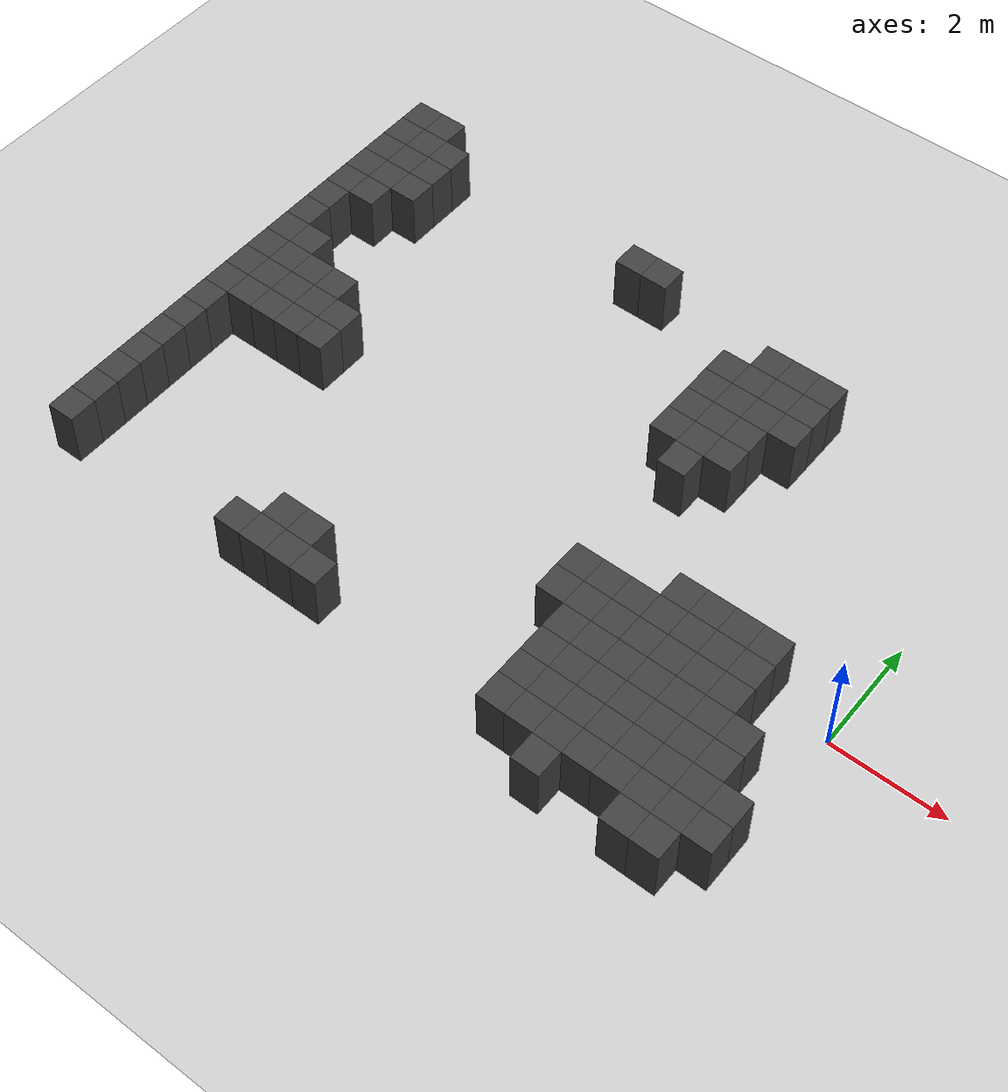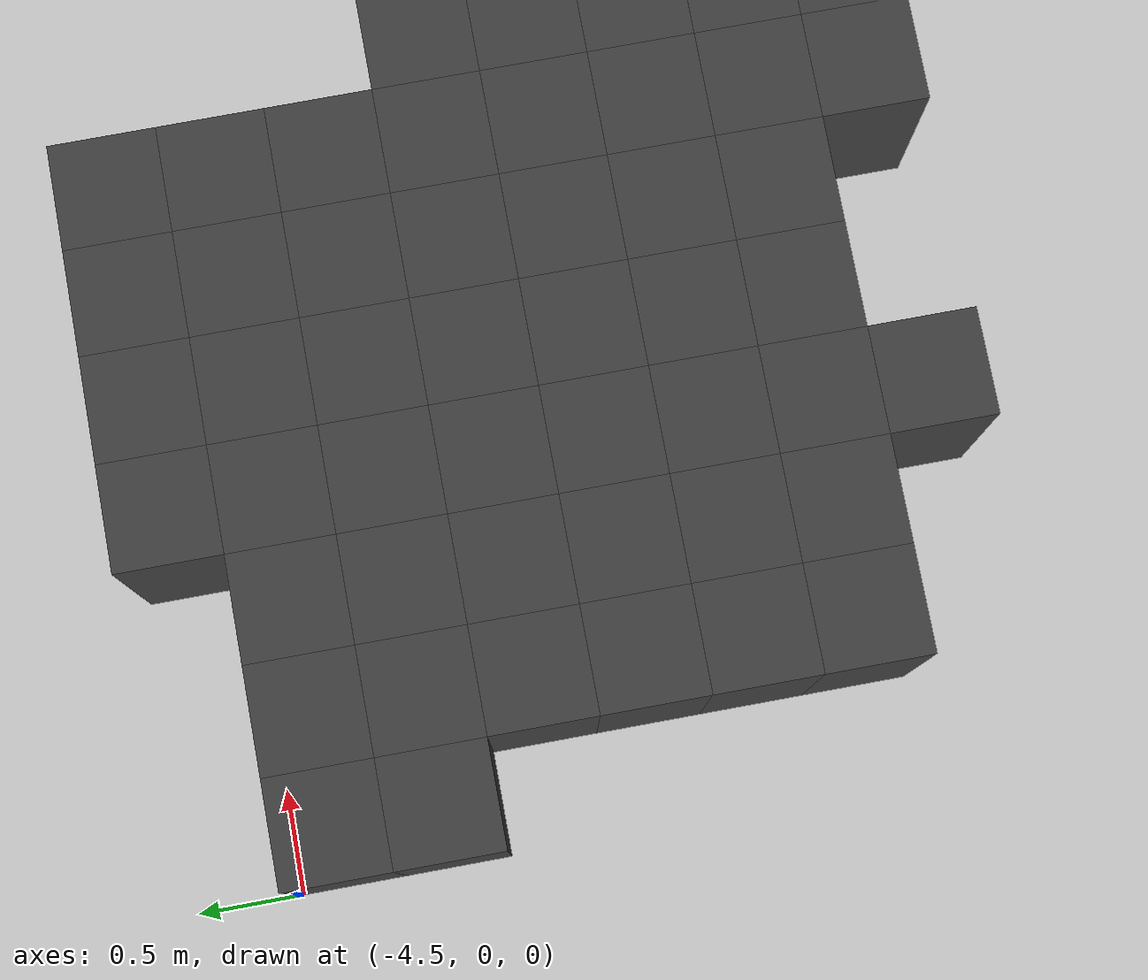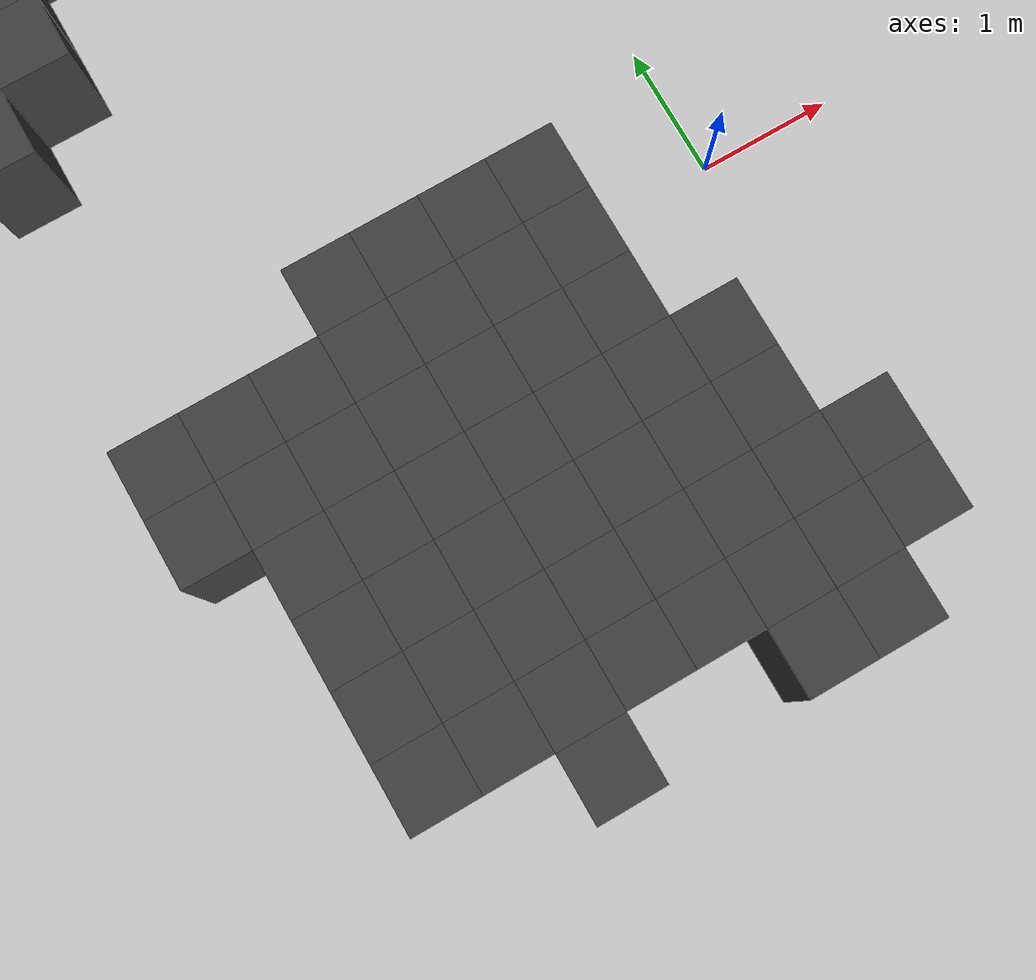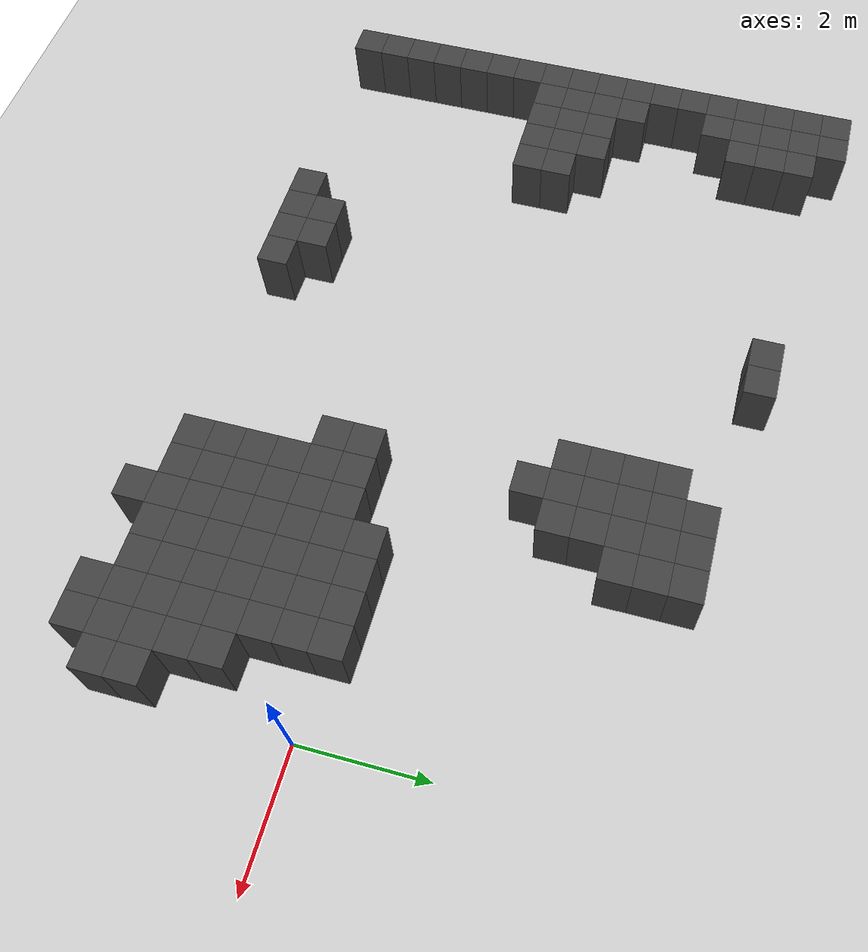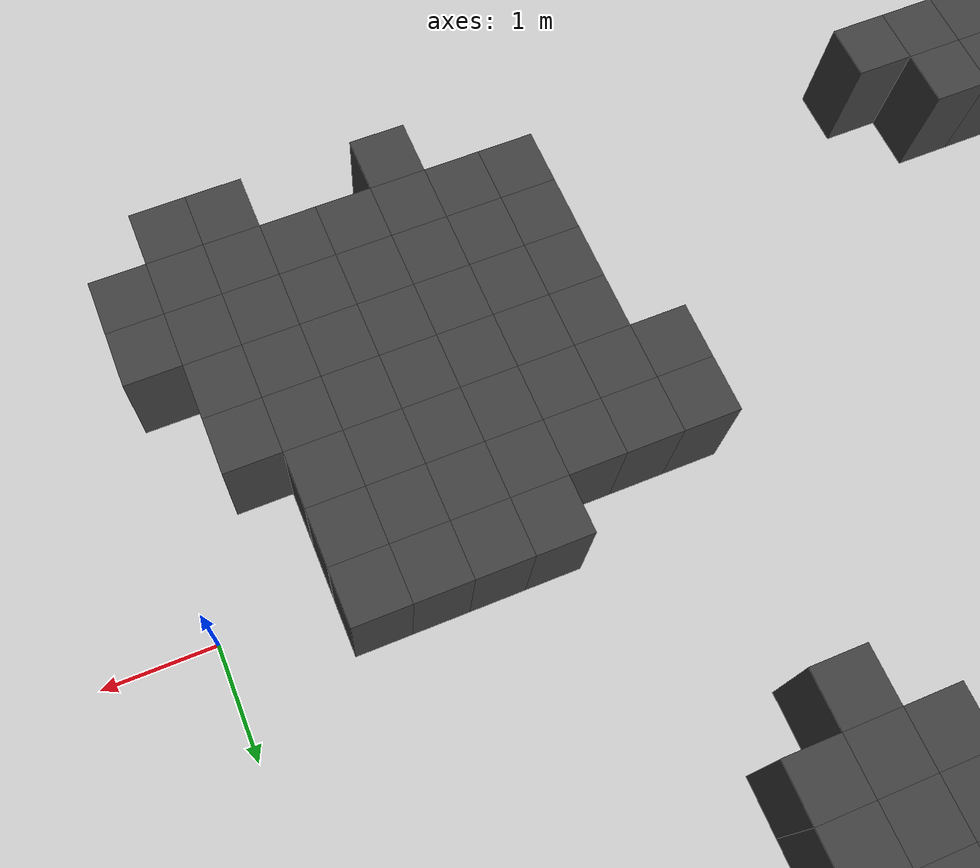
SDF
<sdf version="1.7">
 <world name="map_8829">
  <model name="ground_plane">
   <static>true</static>
   <link name="link">
    <collision name="collision">
     <geometry><plane><normal>0 0 1</normal><size>200 200</size></plane></geometry>
    </collision>
    <visual name="visual">
     <geometry><plane><normal>0 0 1</normal><size>200 200</size></plane></geometry>
     <material><ambient>0.8 0.8 0.8 1</ambient><diffuse>0.8 0.8 0.8 1</diffuse></material>
    </visual>
   </link>
  </model>
  <model name="maze_environment">
   <static>true</static>
   <link name="wall_222">
    <pose>-12.250 5.750 0.500 0 0 0</pose>
    <collision name="col"><geometry><box><size>0.5 0.5 1.0</size></box></geometry></collision>
    <visual name="vis">
     <geometry><box><size>0.5 0.5 1.0</size></box></geometry>
     <material><ambient>0.15 0.15 0.15 1</ambient><diffuse>0.25 0.25 0.25 1</diffuse></material>
    </visual>
   </link>
   <link name="wall_223">
    <pose>-11.750 5.750 0.500 0 0 0</pose>
    <collision name="col"><geometry><box><size>0.5 0.5 1.0</size></box></geometry></collision>
    <visual name="vis">
     <geometry><box><size>0.5 0.5 1.0</size></box></geometry>
     <material><ambient>0.15 0.15 0.15 1</ambient><diffuse>0.25 0.25 0.25 1</diffuse></material>
    </visual>
   </link>
   <link name="wall_237">
    <pose>-12.250 5.250 0.500 0 0 0</pose>
    <collision name="col"><geometry><box><size>0.5 0.5 1.0</size></box></geometry></collision>
    <visual name="vis">
     <geometry><box><size>0.5 0.5 1.0</size></box></geometry>
     <material><ambient>0.15 0.15 0.15 1</ambient><diffuse>0.25 0.25 0.25 1</diffuse></material>
    </visual>
   </link>
   <link name="wall_238">
    <pose>-11.750 5.250 0.500 0 0 0</pose>
    <collision name="col"><geometry><box><size>0.5 0.5 1.0</size></box></geometry></collision>
    <visual name="vis">
     <geometry><box><size>0.5 0.5 1.0</size></box></geometry>
     <material><ambient>0.15 0.15 0.15 1</ambient><diffuse>0.25 0.25 0.25 1</diffuse></material>
    </visual>
   </link>
   <link name="wall_239">
    <pose>-11.250 5.250 0.500 0 0 0</pose>
    <collision name="col"><geometry><box><size>0.5 0.5 1.0</size></box></geometry></collision>
    <visual name="vis">
     <geometry><box><size>0.5 0.5 1.0</size></box></geometry>
     <material><ambient>0.15 0.15 0.15 1</ambient><diffuse>0.25 0.25 0.25 1</diffuse></material>
    </visual>
   </link>
   <link name="wall_240">
    <pose>-7.250 5.250 0.500 0 0 0</pose>
    <collision name="col"><geometry><box><size>0.5 0.5 1.0</size></box></geometry></collision>
    <visual name="vis">
     <geometry><box><size>0.5 0.5 1.0</size></box></geometry>
     <material><ambient>0.15 0.15 0.15 1</ambient><diffuse>0.25 0.25 0.25 1</diffuse></material>
    </visual>
   </link>
   <link name="wall_241">
    <pose>-6.750 5.250 0.500 0 0 0</pose>
    <collision name="col"><geometry><box><size>0.5 0.5 1.0</size></box></geometry></collision>
    <visual name="vis">
     <geometry><box><size>0.5 0.5 1.0</size></box></geometry>
     <material><ambient>0.15 0.15 0.15 1</ambient><diffuse>0.25 0.25 0.25 1</diffuse></material>
    </visual>
   </link>
   <link name="wall_250">
    <pose>-12.250 4.750 0.500 0 0 0</pose>
    <collision name="col"><geometry><box><size>0.5 0.5 1.0</size></box></geometry></collision>
    <visual name="vis">
     <geometry><box><size>0.5 0.5 1.0</size></box></geometry>
     <material><ambient>0.15 0.15 0.15 1</ambient><diffuse>0.25 0.25 0.25 1</diffuse></material>
    </visual>
   </link>
   <link name="wall_251">
    <pose>-11.750 4.750 0.500 0 0 0</pose>
    <collision name="col"><geometry><box><size>0.5 0.5 1.0</size></box></geometry></collision>
    <visual name="vis">
     <geometry><box><size>0.5 0.5 1.0</size></box></geometry>
     <material><ambient>0.15 0.15 0.15 1</ambient><diffuse>0.25 0.25 0.25 1</diffuse></material>
    </visual>
   </link>
   <link name="wall_252">
    <pose>-11.250 4.750 0.500 0 0 0</pose>
    <collision name="col"><geometry><box><size>0.5 0.5 1.0</size></box></geometry></collision>
    <visual name="vis">
     <geometry><box><size>0.5 0.5 1.0</size></box></geometry>
     <material><ambient>0.15 0.15 0.15 1</ambient><diffuse>0.25 0.25 0.25 1</diffuse></material>
    </visual>
   </link>
   <link name="wall_253">
    <pose>-4.250 4.750 0.500 0 0 0</pose>
    <collision name="col"><geometry><box><size>0.5 0.5 1.0</size></box></geometry></collision>
    <visual name="vis">
     <geometry><box><size>0.5 0.5 1.0</size></box></geometry>
     <material><ambient>0.15 0.15 0.15 1</ambient><diffuse>0.25 0.25 0.25 1</diffuse></material>
    </visual>
   </link>
   <link name="wall_254">
    <pose>-3.750 4.750 0.500 0 0 0</pose>
    <collision name="col"><geometry><box><size>0.5 0.5 1.0</size></box></geometry></collision>
    <visual name="vis">
     <geometry><box><size>0.5 0.5 1.0</size></box></geometry>
     <material><ambient>0.15 0.15 0.15 1</ambient><diffuse>0.25 0.25 0.25 1</diffuse></material>
    </visual>
   </link>
   <link name="wall_255">
    <pose>-3.250 4.750 0.500 0 0 0</pose>
    <collision name="col"><geometry><box><size>0.5 0.5 1.0</size></box></geometry></collision>
    <visual name="vis">
     <geometry><box><size>0.5 0.5 1.0</size></box></geometry>
     <material><ambient>0.15 0.15 0.15 1</ambient><diffuse>0.25 0.25 0.25 1</diffuse></material>
    </visual>
   </link>
   <link name="wall_259">
    <pose>-12.250 4.250 0.500 0 0 0</pose>
    <collision name="col"><geometry><box><size>0.5 0.5 1.0</size></box></geometry></collision>
    <visual name="vis">
     <geometry><box><size>0.5 0.5 1.0</size></box></geometry>
     <material><ambient>0.15 0.15 0.15 1</ambient><diffuse>0.25 0.25 0.25 1</diffuse></material>
    </visual>
   </link>
   <link name="wall_260">
    <pose>-11.750 4.250 0.500 0 0 0</pose>
    <collision name="col"><geometry><box><size>0.5 0.5 1.0</size></box></geometry></collision>
    <visual name="vis">
     <geometry><box><size>0.5 0.5 1.0</size></box></geometry>
     <material><ambient>0.15 0.15 0.15 1</ambient><diffuse>0.25 0.25 0.25 1</diffuse></material>
    </visual>
   </link>
   <link name="wall_261">
    <pose>-11.250 4.250 0.500 0 0 0</pose>
    <collision name="col"><geometry><box><size>0.5 0.5 1.0</size></box></geometry></collision>
    <visual name="vis">
     <geometry><box><size>0.5 0.5 1.0</size></box></geometry>
     <material><ambient>0.15 0.15 0.15 1</ambient><diffuse>0.25 0.25 0.25 1</diffuse></material>
    </visual>
   </link>
   <link name="wall_262">
    <pose>-4.750 4.250 0.500 0 0 0</pose>
    <collision name="col"><geometry><box><size>0.5 0.5 1.0</size></box></geometry></collision>
    <visual name="vis">
     <geometry><box><size>0.5 0.5 1.0</size></box></geometry>
     <material><ambient>0.15 0.15 0.15 1</ambient><diffuse>0.25 0.25 0.25 1</diffuse></material>
    </visual>
   </link>
   <link name="wall_263">
    <pose>-4.250 4.250 0.500 0 0 0</pose>
    <collision name="col"><geometry><box><size>0.5 0.5 1.0</size></box></geometry></collision>
    <visual name="vis">
     <geometry><box><size>0.5 0.5 1.0</size></box></geometry>
     <material><ambient>0.15 0.15 0.15 1</ambient><diffuse>0.25 0.25 0.25 1</diffuse></material>
    </visual>
   </link>
   <link name="wall_264">
    <pose>-3.750 4.250 0.500 0 0 0</pose>
    <collision name="col"><geometry><box><size>0.5 0.5 1.0</size></box></geometry></collision>
    <visual name="vis">
     <geometry><box><size>0.5 0.5 1.0</size></box></geometry>
     <material><ambient>0.15 0.15 0.15 1</ambient><diffuse>0.25 0.25 0.25 1</diffuse></material>
    </visual>
   </link>
   <link name="wall_265">
    <pose>-3.250 4.250 0.500 0 0 0</pose>
    <collision name="col"><geometry><box><size>0.5 0.5 1.0</size></box></geometry></collision>
    <visual name="vis">
     <geometry><box><size>0.5 0.5 1.0</size></box></geometry>
     <material><ambient>0.15 0.15 0.15 1</ambient><diffuse>0.25 0.25 0.25 1</diffuse></material>
    </visual>
   </link>
   <link name="wall_268">
    <pose>-12.250 3.750 0.500 0 0 0</pose>
    <collision name="col"><geometry><box><size>0.5 0.5 1.0</size></box></geometry></collision>
    <visual name="vis">
     <geometry><box><size>0.5 0.5 1.0</size></box></geometry>
     <material><ambient>0.15 0.15 0.15 1</ambient><diffuse>0.25 0.25 0.25 1</diffuse></material>
    </visual>
   </link>
   <link name="wall_269">
    <pose>-11.750 3.750 0.500 0 0 0</pose>
    <collision name="col"><geometry><box><size>0.5 0.5 1.0</size></box></geometry></collision>
    <visual name="vis">
     <geometry><box><size>0.5 0.5 1.0</size></box></geometry>
     <material><ambient>0.15 0.15 0.15 1</ambient><diffuse>0.25 0.25 0.25 1</diffuse></material>
    </visual>
   </link>
   <link name="wall_270">
    <pose>-4.750 3.750 0.500 0 0 0</pose>
    <collision name="col"><geometry><box><size>0.5 0.5 1.0</size></box></geometry></collision>
    <visual name="vis">
     <geometry><box><size>0.5 0.5 1.0</size></box></geometry>
     <material><ambient>0.15 0.15 0.15 1</ambient><diffuse>0.25 0.25 0.25 1</diffuse></material>
    </visual>
   </link>
   <link name="wall_271">
    <pose>-4.250 3.750 0.500 0 0 0</pose>
    <collision name="col"><geometry><box><size>0.5 0.5 1.0</size></box></geometry></collision>
    <visual name="vis">
     <geometry><box><size>0.5 0.5 1.0</size></box></geometry>
     <material><ambient>0.15 0.15 0.15 1</ambient><diffuse>0.25 0.25 0.25 1</diffuse></material>
    </visual>
   </link>
   <link name="wall_272">
    <pose>-3.750 3.750 0.500 0 0 0</pose>
    <collision name="col"><geometry><box><size>0.5 0.5 1.0</size></box></geometry></collision>
    <visual name="vis">
     <geometry><box><size>0.5 0.5 1.0</size></box></geometry>
     <material><ambient>0.15 0.15 0.15 1</ambient><diffuse>0.25 0.25 0.25 1</diffuse></material>
    </visual>
   </link>
   <link name="wall_273">
    <pose>-3.250 3.750 0.500 0 0 0</pose>
    <collision name="col"><geometry><box><size>0.5 0.5 1.0</size></box></geometry></collision>
    <visual name="vis">
     <geometry><box><size>0.5 0.5 1.0</size></box></geometry>
     <material><ambient>0.15 0.15 0.15 1</ambient><diffuse>0.25 0.25 0.25 1</diffuse></material>
    </visual>
   </link>
   <link name="wall_279">
    <pose>-12.250 3.250 0.500 0 0 0</pose>
    <collision name="col"><geometry><box><size>0.5 0.5 1.0</size></box></geometry></collision>
    <visual name="vis">
     <geometry><box><size>0.5 0.5 1.0</size></box></geometry>
     <material><ambient>0.15 0.15 0.15 1</ambient><diffuse>0.25 0.25 0.25 1</diffuse></material>
    </visual>
   </link>
   <link name="wall_280">
    <pose>-4.750 3.250 0.500 0 0 0</pose>
    <collision name="col"><geometry><box><size>0.5 0.5 1.0</size></box></geometry></collision>
    <visual name="vis">
     <geometry><box><size>0.5 0.5 1.0</size></box></geometry>
     <material><ambient>0.15 0.15 0.15 1</ambient><diffuse>0.25 0.25 0.25 1</diffuse></material>
    </visual>
   </link>
   <link name="wall_281">
    <pose>-4.250 3.250 0.500 0 0 0</pose>
    <collision name="col"><geometry><box><size>0.5 0.5 1.0</size></box></geometry></collision>
    <visual name="vis">
     <geometry><box><size>0.5 0.5 1.0</size></box></geometry>
     <material><ambient>0.15 0.15 0.15 1</ambient><diffuse>0.25 0.25 0.25 1</diffuse></material>
    </visual>
   </link>
   <link name="wall_282">
    <pose>-3.750 3.250 0.500 0 0 0</pose>
    <collision name="col"><geometry><box><size>0.5 0.5 1.0</size></box></geometry></collision>
    <visual name="vis">
     <geometry><box><size>0.5 0.5 1.0</size></box></geometry>
     <material><ambient>0.15 0.15 0.15 1</ambient><diffuse>0.25 0.25 0.25 1</diffuse></material>
    </visual>
   </link>
   <link name="wall_289">
    <pose>-12.250 2.750 0.500 0 0 0</pose>
    <collision name="col"><geometry><box><size>0.5 0.5 1.0</size></box></geometry></collision>
    <visual name="vis">
     <geometry><box><size>0.5 0.5 1.0</size></box></geometry>
     <material><ambient>0.15 0.15 0.15 1</ambient><diffuse>0.25 0.25 0.25 1</diffuse></material>
    </visual>
   </link>
   <link name="wall_290">
    <pose>-4.750 2.750 0.500 0 0 0</pose>
    <collision name="col"><geometry><box><size>0.5 0.5 1.0</size></box></geometry></collision>
    <visual name="vis">
     <geometry><box><size>0.5 0.5 1.0</size></box></geometry>
     <material><ambient>0.15 0.15 0.15 1</ambient><diffuse>0.25 0.25 0.25 1</diffuse></material>
    </visual>
   </link>
   <link name="wall_291">
    <pose>-4.250 2.750 0.500 0 0 0</pose>
    <collision name="col"><geometry><box><size>0.5 0.5 1.0</size></box></geometry></collision>
    <visual name="vis">
     <geometry><box><size>0.5 0.5 1.0</size></box></geometry>
     <material><ambient>0.15 0.15 0.15 1</ambient><diffuse>0.25 0.25 0.25 1</diffuse></material>
    </visual>
   </link>
   <link name="wall_292">
    <pose>-3.750 2.750 0.500 0 0 0</pose>
    <collision name="col"><geometry><box><size>0.5 0.5 1.0</size></box></geometry></collision>
    <visual name="vis">
     <geometry><box><size>0.5 0.5 1.0</size></box></geometry>
     <material><ambient>0.15 0.15 0.15 1</ambient><diffuse>0.25 0.25 0.25 1</diffuse></material>
    </visual>
   </link>
   <link name="wall_299">
    <pose>-12.250 2.250 0.500 0 0 0</pose>
    <collision name="col"><geometry><box><size>0.5 0.5 1.0</size></box></geometry></collision>
    <visual name="vis">
     <geometry><box><size>0.5 0.5 1.0</size></box></geometry>
     <material><ambient>0.15 0.15 0.15 1</ambient><diffuse>0.25 0.25 0.25 1</diffuse></material>
    </visual>
   </link>
   <link name="wall_300">
    <pose>-11.750 2.250 0.500 0 0 0</pose>
    <collision name="col"><geometry><box><size>0.5 0.5 1.0</size></box></geometry></collision>
    <visual name="vis">
     <geometry><box><size>0.5 0.5 1.0</size></box></geometry>
     <material><ambient>0.15 0.15 0.15 1</ambient><diffuse>0.25 0.25 0.25 1</diffuse></material>
    </visual>
   </link>
   <link name="wall_301">
    <pose>-4.250 2.250 0.500 0 0 0</pose>
    <collision name="col"><geometry><box><size>0.5 0.5 1.0</size></box></geometry></collision>
    <visual name="vis">
     <geometry><box><size>0.5 0.5 1.0</size></box></geometry>
     <material><ambient>0.15 0.15 0.15 1</ambient><diffuse>0.25 0.25 0.25 1</diffuse></material>
    </visual>
   </link>
   <link name="wall_308">
    <pose>-12.250 1.750 0.500 0 0 0</pose>
    <collision name="col"><geometry><box><size>0.5 0.5 1.0</size></box></geometry></collision>
    <visual name="vis">
     <geometry><box><size>0.5 0.5 1.0</size></box></geometry>
     <material><ambient>0.15 0.15 0.15 1</ambient><diffuse>0.25 0.25 0.25 1</diffuse></material>
    </visual>
   </link>
   <link name="wall_309">
    <pose>-11.750 1.750 0.500 0 0 0</pose>
    <collision name="col"><geometry><box><size>0.5 0.5 1.0</size></box></geometry></collision>
    <visual name="vis">
     <geometry><box><size>0.5 0.5 1.0</size></box></geometry>
     <material><ambient>0.15 0.15 0.15 1</ambient><diffuse>0.25 0.25 0.25 1</diffuse></material>
    </visual>
   </link>
   <link name="wall_310">
    <pose>-11.250 1.750 0.500 0 0 0</pose>
    <collision name="col"><geometry><box><size>0.5 0.5 1.0</size></box></geometry></collision>
    <visual name="vis">
     <geometry><box><size>0.5 0.5 1.0</size></box></geometry>
     <material><ambient>0.15 0.15 0.15 1</ambient><diffuse>0.25 0.25 0.25 1</diffuse></material>
    </visual>
   </link>
   <link name="wall_311">
    <pose>-10.750 1.750 0.500 0 0 0</pose>
    <collision name="col"><geometry><box><size>0.5 0.5 1.0</size></box></geometry></collision>
    <visual name="vis">
     <geometry><box><size>0.5 0.5 1.0</size></box></geometry>
     <material><ambient>0.15 0.15 0.15 1</ambient><diffuse>0.25 0.25 0.25 1</diffuse></material>
    </visual>
   </link>
   <link name="wall_317">
    <pose>-12.250 1.250 0.500 0 0 0</pose>
    <collision name="col"><geometry><box><size>0.5 0.5 1.0</size></box></geometry></collision>
    <visual name="vis">
     <geometry><box><size>0.5 0.5 1.0</size></box></geometry>
     <material><ambient>0.15 0.15 0.15 1</ambient><diffuse>0.25 0.25 0.25 1</diffuse></material>
    </visual>
   </link>
   <link name="wall_318">
    <pose>-11.750 1.250 0.500 0 0 0</pose>
    <collision name="col"><geometry><box><size>0.5 0.5 1.0</size></box></geometry></collision>
    <visual name="vis">
     <geometry><box><size>0.5 0.5 1.0</size></box></geometry>
     <material><ambient>0.15 0.15 0.15 1</ambient><diffuse>0.25 0.25 0.25 1</diffuse></material>
    </visual>
   </link>
   <link name="wall_319">
    <pose>-11.250 1.250 0.500 0 0 0</pose>
    <collision name="col"><geometry><box><size>0.5 0.5 1.0</size></box></geometry></collision>
    <visual name="vis">
     <geometry><box><size>0.5 0.5 1.0</size></box></geometry>
     <material><ambient>0.15 0.15 0.15 1</ambient><diffuse>0.25 0.25 0.25 1</diffuse></material>
    </visual>
   </link>
   <link name="wall_320">
    <pose>-10.750 1.250 0.500 0 0 0</pose>
    <collision name="col"><geometry><box><size>0.5 0.5 1.0</size></box></geometry></collision>
    <visual name="vis">
     <geometry><box><size>0.5 0.5 1.0</size></box></geometry>
     <material><ambient>0.15 0.15 0.15 1</ambient><diffuse>0.25 0.25 0.25 1</diffuse></material>
    </visual>
   </link>
   <link name="wall_321">
    <pose>-10.250 1.250 0.500 0 0 0</pose>
    <collision name="col"><geometry><box><size>0.5 0.5 1.0</size></box></geometry></collision>
    <visual name="vis">
     <geometry><box><size>0.5 0.5 1.0</size></box></geometry>
     <material><ambient>0.15 0.15 0.15 1</ambient><diffuse>0.25 0.25 0.25 1</diffuse></material>
    </visual>
   </link>
   <link name="wall_326">
    <pose>-12.250 0.750 0.500 0 0 0</pose>
    <collision name="col"><geometry><box><size>0.5 0.5 1.0</size></box></geometry></collision>
    <visual name="vis">
     <geometry><box><size>0.5 0.5 1.0</size></box></geometry>
     <material><ambient>0.15 0.15 0.15 1</ambient><diffuse>0.25 0.25 0.25 1</diffuse></material>
    </visual>
   </link>
   <link name="wall_327">
    <pose>-11.750 0.750 0.500 0 0 0</pose>
    <collision name="col"><geometry><box><size>0.5 0.5 1.0</size></box></geometry></collision>
    <visual name="vis">
     <geometry><box><size>0.5 0.5 1.0</size></box></geometry>
     <material><ambient>0.15 0.15 0.15 1</ambient><diffuse>0.25 0.25 0.25 1</diffuse></material>
    </visual>
   </link>
   <link name="wall_328">
    <pose>-11.250 0.750 0.500 0 0 0</pose>
    <collision name="col"><geometry><box><size>0.5 0.5 1.0</size></box></geometry></collision>
    <visual name="vis">
     <geometry><box><size>0.5 0.5 1.0</size></box></geometry>
     <material><ambient>0.15 0.15 0.15 1</ambient><diffuse>0.25 0.25 0.25 1</diffuse></material>
    </visual>
   </link>
   <link name="wall_329">
    <pose>-10.750 0.750 0.500 0 0 0</pose>
    <collision name="col"><geometry><box><size>0.5 0.5 1.0</size></box></geometry></collision>
    <visual name="vis">
     <geometry><box><size>0.5 0.5 1.0</size></box></geometry>
     <material><ambient>0.15 0.15 0.15 1</ambient><diffuse>0.25 0.25 0.25 1</diffuse></material>
    </visual>
   </link>
   <link name="wall_330">
    <pose>-10.250 0.750 0.500 0 0 0</pose>
    <collision name="col"><geometry><box><size>0.5 0.5 1.0</size></box></geometry></collision>
    <visual name="vis">
     <geometry><box><size>0.5 0.5 1.0</size></box></geometry>
     <material><ambient>0.15 0.15 0.15 1</ambient><diffuse>0.25 0.25 0.25 1</diffuse></material>
    </visual>
   </link>
   <link name="wall_336">
    <pose>-12.250 0.250 0.500 0 0 0</pose>
    <collision name="col"><geometry><box><size>0.5 0.5 1.0</size></box></geometry></collision>
    <visual name="vis">
     <geometry><box><size>0.5 0.5 1.0</size></box></geometry>
     <material><ambient>0.15 0.15 0.15 1</ambient><diffuse>0.25 0.25 0.25 1</diffuse></material>
    </visual>
   </link>
   <link name="wall_337">
    <pose>-2.750 0.250 0.500 0 0 0</pose>
    <collision name="col"><geometry><box><size>0.5 0.5 1.0</size></box></geometry></collision>
    <visual name="vis">
     <geometry><box><size>0.5 0.5 1.0</size></box></geometry>
     <material><ambient>0.15 0.15 0.15 1</ambient><diffuse>0.25 0.25 0.25 1</diffuse></material>
    </visual>
   </link>
   <link name="wall_338">
    <pose>-2.250 0.250 0.500 0 0 0</pose>
    <collision name="col"><geometry><box><size>0.5 0.5 1.0</size></box></geometry></collision>
    <visual name="vis">
     <geometry><box><size>0.5 0.5 1.0</size></box></geometry>
     <material><ambient>0.15 0.15 0.15 1</ambient><diffuse>0.25 0.25 0.25 1</diffuse></material>
    </visual>
   </link>
   <link name="wall_339">
    <pose>-1.750 0.250 0.500 0 0 0</pose>
    <collision name="col"><geometry><box><size>0.5 0.5 1.0</size></box></geometry></collision>
    <visual name="vis">
     <geometry><box><size>0.5 0.5 1.0</size></box></geometry>
     <material><ambient>0.15 0.15 0.15 1</ambient><diffuse>0.25 0.25 0.25 1</diffuse></material>
    </visual>
   </link>
   <link name="wall_340">
    <pose>-1.250 0.250 0.500 0 0 0</pose>
    <collision name="col"><geometry><box><size>0.5 0.5 1.0</size></box></geometry></collision>
    <visual name="vis">
     <geometry><box><size>0.5 0.5 1.0</size></box></geometry>
     <material><ambient>0.15 0.15 0.15 1</ambient><diffuse>0.25 0.25 0.25 1</diffuse></material>
    </visual>
   </link>
   <link name="wall_346">
    <pose>-12.250 -0.250 0.500 0 0 0</pose>
    <collision name="col"><geometry><box><size>0.5 0.5 1.0</size></box></geometry></collision>
    <visual name="vis">
     <geometry><box><size>0.5 0.5 1.0</size></box></geometry>
     <material><ambient>0.15 0.15 0.15 1</ambient><diffuse>0.25 0.25 0.25 1</diffuse></material>
    </visual>
   </link>
   <link name="wall_347">
    <pose>-4.250 -0.250 0.500 0 0 0</pose>
    <collision name="col"><geometry><box><size>0.5 0.5 1.0</size></box></geometry></collision>
    <visual name="vis">
     <geometry><box><size>0.5 0.5 1.0</size></box></geometry>
     <material><ambient>0.15 0.15 0.15 1</ambient><diffuse>0.25 0.25 0.25 1</diffuse></material>
    </visual>
   </link>
   <link name="wall_348">
    <pose>-3.750 -0.250 0.500 0 0 0</pose>
    <collision name="col"><geometry><box><size>0.5 0.5 1.0</size></box></geometry></collision>
    <visual name="vis">
     <geometry><box><size>0.5 0.5 1.0</size></box></geometry>
     <material><ambient>0.15 0.15 0.15 1</ambient><diffuse>0.25 0.25 0.25 1</diffuse></material>
    </visual>
   </link>
   <link name="wall_349">
    <pose>-3.250 -0.250 0.500 0 0 0</pose>
    <collision name="col"><geometry><box><size>0.5 0.5 1.0</size></box></geometry></collision>
    <visual name="vis">
     <geometry><box><size>0.5 0.5 1.0</size></box></geometry>
     <material><ambient>0.15 0.15 0.15 1</ambient><diffuse>0.25 0.25 0.25 1</diffuse></material>
    </visual>
   </link>
   <link name="wall_350">
    <pose>-2.750 -0.250 0.500 0 0 0</pose>
    <collision name="col"><geometry><box><size>0.5 0.5 1.0</size></box></geometry></collision>
    <visual name="vis">
     <geometry><box><size>0.5 0.5 1.0</size></box></geometry>
     <material><ambient>0.15 0.15 0.15 1</ambient><diffuse>0.25 0.25 0.25 1</diffuse></material>
    </visual>
   </link>
   <link name="wall_351">
    <pose>-2.250 -0.250 0.500 0 0 0</pose>
    <collision name="col"><geometry><box><size>0.5 0.5 1.0</size></box></geometry></collision>
    <visual name="vis">
     <geometry><box><size>0.5 0.5 1.0</size></box></geometry>
     <material><ambient>0.15 0.15 0.15 1</ambient><diffuse>0.25 0.25 0.25 1</diffuse></material>
    </visual>
   </link>
   <link name="wall_352">
    <pose>-1.750 -0.250 0.500 0 0 0</pose>
    <collision name="col"><geometry><box><size>0.5 0.5 1.0</size></box></geometry></collision>
    <visual name="vis">
     <geometry><box><size>0.5 0.5 1.0</size></box></geometry>
     <material><ambient>0.15 0.15 0.15 1</ambient><diffuse>0.25 0.25 0.25 1</diffuse></material>
    </visual>
   </link>
   <link name="wall_353">
    <pose>-1.250 -0.250 0.500 0 0 0</pose>
    <collision name="col"><geometry><box><size>0.5 0.5 1.0</size></box></geometry></collision>
    <visual name="vis">
     <geometry><box><size>0.5 0.5 1.0</size></box></geometry>
     <material><ambient>0.15 0.15 0.15 1</ambient><diffuse>0.25 0.25 0.25 1</diffuse></material>
    </visual>
   </link>
   <link name="wall_359">
    <pose>-12.250 -0.750 0.500 0 0 0</pose>
    <collision name="col"><geometry><box><size>0.5 0.5 1.0</size></box></geometry></collision>
    <visual name="vis">
     <geometry><box><size>0.5 0.5 1.0</size></box></geometry>
     <material><ambient>0.15 0.15 0.15 1</ambient><diffuse>0.25 0.25 0.25 1</diffuse></material>
    </visual>
   </link>
   <link name="wall_360">
    <pose>-4.250 -0.750 0.500 0 0 0</pose>
    <collision name="col"><geometry><box><size>0.5 0.5 1.0</size></box></geometry></collision>
    <visual name="vis">
     <geometry><box><size>0.5 0.5 1.0</size></box></geometry>
     <material><ambient>0.15 0.15 0.15 1</ambient><diffuse>0.25 0.25 0.25 1</diffuse></material>
    </visual>
   </link>
   <link name="wall_361">
    <pose>-3.750 -0.750 0.500 0 0 0</pose>
    <collision name="col"><geometry><box><size>0.5 0.5 1.0</size></box></geometry></collision>
    <visual name="vis">
     <geometry><box><size>0.5 0.5 1.0</size></box></geometry>
     <material><ambient>0.15 0.15 0.15 1</ambient><diffuse>0.25 0.25 0.25 1</diffuse></material>
    </visual>
   </link>
   <link name="wall_362">
    <pose>-3.250 -0.750 0.500 0 0 0</pose>
    <collision name="col"><geometry><box><size>0.5 0.5 1.0</size></box></geometry></collision>
    <visual name="vis">
     <geometry><box><size>0.5 0.5 1.0</size></box></geometry>
     <material><ambient>0.15 0.15 0.15 1</ambient><diffuse>0.25 0.25 0.25 1</diffuse></material>
    </visual>
   </link>
   <link name="wall_363">
    <pose>-2.750 -0.750 0.500 0 0 0</pose>
    <collision name="col"><geometry><box><size>0.5 0.5 1.0</size></box></geometry></collision>
    <visual name="vis">
     <geometry><box><size>0.5 0.5 1.0</size></box></geometry>
     <material><ambient>0.15 0.15 0.15 1</ambient><diffuse>0.25 0.25 0.25 1</diffuse></material>
    </visual>
   </link>
   <link name="wall_364">
    <pose>-2.250 -0.750 0.500 0 0 0</pose>
    <collision name="col"><geometry><box><size>0.5 0.5 1.0</size></box></geometry></collision>
    <visual name="vis">
     <geometry><box><size>0.5 0.5 1.0</size></box></geometry>
     <material><ambient>0.15 0.15 0.15 1</ambient><diffuse>0.25 0.25 0.25 1</diffuse></material>
    </visual>
   </link>
   <link name="wall_365">
    <pose>-1.750 -0.750 0.500 0 0 0</pose>
    <collision name="col"><geometry><box><size>0.5 0.5 1.0</size></box></geometry></collision>
    <visual name="vis">
     <geometry><box><size>0.5 0.5 1.0</size></box></geometry>
     <material><ambient>0.15 0.15 0.15 1</ambient><diffuse>0.25 0.25 0.25 1</diffuse></material>
    </visual>
   </link>
   <link name="wall_366">
    <pose>-1.250 -0.750 0.500 0 0 0</pose>
    <collision name="col"><geometry><box><size>0.5 0.5 1.0</size></box></geometry></collision>
    <visual name="vis">
     <geometry><box><size>0.5 0.5 1.0</size></box></geometry>
     <material><ambient>0.15 0.15 0.15 1</ambient><diffuse>0.25 0.25 0.25 1</diffuse></material>
    </visual>
   </link>
   <link name="wall_370">
    <pose>-12.250 -1.250 0.500 0 0 0</pose>
    <collision name="col"><geometry><box><size>0.5 0.5 1.0</size></box></geometry></collision>
    <visual name="vis">
     <geometry><box><size>0.5 0.5 1.0</size></box></geometry>
     <material><ambient>0.15 0.15 0.15 1</ambient><diffuse>0.25 0.25 0.25 1</diffuse></material>
    </visual>
   </link>
   <link name="wall_371">
    <pose>-3.750 -1.250 0.500 0 0 0</pose>
    <collision name="col"><geometry><box><size>0.5 0.5 1.0</size></box></geometry></collision>
    <visual name="vis">
     <geometry><box><size>0.5 0.5 1.0</size></box></geometry>
     <material><ambient>0.15 0.15 0.15 1</ambient><diffuse>0.25 0.25 0.25 1</diffuse></material>
    </visual>
   </link>
   <link name="wall_372">
    <pose>-3.250 -1.250 0.500 0 0 0</pose>
    <collision name="col"><geometry><box><size>0.5 0.5 1.0</size></box></geometry></collision>
    <visual name="vis">
     <geometry><box><size>0.5 0.5 1.0</size></box></geometry>
     <material><ambient>0.15 0.15 0.15 1</ambient><diffuse>0.25 0.25 0.25 1</diffuse></material>
    </visual>
   </link>
   <link name="wall_373">
    <pose>-2.750 -1.250 0.500 0 0 0</pose>
    <collision name="col"><geometry><box><size>0.5 0.5 1.0</size></box></geometry></collision>
    <visual name="vis">
     <geometry><box><size>0.5 0.5 1.0</size></box></geometry>
     <material><ambient>0.15 0.15 0.15 1</ambient><diffuse>0.25 0.25 0.25 1</diffuse></material>
    </visual>
   </link>
   <link name="wall_374">
    <pose>-2.250 -1.250 0.500 0 0 0</pose>
    <collision name="col"><geometry><box><size>0.5 0.5 1.0</size></box></geometry></collision>
    <visual name="vis">
     <geometry><box><size>0.5 0.5 1.0</size></box></geometry>
     <material><ambient>0.15 0.15 0.15 1</ambient><diffuse>0.25 0.25 0.25 1</diffuse></material>
    </visual>
   </link>
   <link name="wall_375">
    <pose>-1.750 -1.250 0.500 0 0 0</pose>
    <collision name="col"><geometry><box><size>0.5 0.5 1.0</size></box></geometry></collision>
    <visual name="vis">
     <geometry><box><size>0.5 0.5 1.0</size></box></geometry>
     <material><ambient>0.15 0.15 0.15 1</ambient><diffuse>0.25 0.25 0.25 1</diffuse></material>
    </visual>
   </link>
   <link name="wall_376">
    <pose>-1.250 -1.250 0.500 0 0 0</pose>
    <collision name="col"><geometry><box><size>0.5 0.5 1.0</size></box></geometry></collision>
    <visual name="vis">
     <geometry><box><size>0.5 0.5 1.0</size></box></geometry>
     <material><ambient>0.15 0.15 0.15 1</ambient><diffuse>0.25 0.25 0.25 1</diffuse></material>
    </visual>
   </link>
   <link name="wall_377">
    <pose>-0.750 -1.250 0.500 0 0 0</pose>
    <collision name="col"><geometry><box><size>0.5 0.5 1.0</size></box></geometry></collision>
    <visual name="vis">
     <geometry><box><size>0.5 0.5 1.0</size></box></geometry>
     <material><ambient>0.15 0.15 0.15 1</ambient><diffuse>0.25 0.25 0.25 1</diffuse></material>
    </visual>
   </link>
   <link name="wall_379">
    <pose>-12.250 -1.750 0.500 0 0 0</pose>
    <collision name="col"><geometry><box><size>0.5 0.5 1.0</size></box></geometry></collision>
    <visual name="vis">
     <geometry><box><size>0.5 0.5 1.0</size></box></geometry>
     <material><ambient>0.15 0.15 0.15 1</ambient><diffuse>0.25 0.25 0.25 1</diffuse></material>
    </visual>
   </link>
   <link name="wall_380">
    <pose>-3.750 -1.750 0.500 0 0 0</pose>
    <collision name="col"><geometry><box><size>0.5 0.5 1.0</size></box></geometry></collision>
    <visual name="vis">
     <geometry><box><size>0.5 0.5 1.0</size></box></geometry>
     <material><ambient>0.15 0.15 0.15 1</ambient><diffuse>0.25 0.25 0.25 1</diffuse></material>
    </visual>
   </link>
   <link name="wall_381">
    <pose>-3.250 -1.750 0.500 0 0 0</pose>
    <collision name="col"><geometry><box><size>0.5 0.5 1.0</size></box></geometry></collision>
    <visual name="vis">
     <geometry><box><size>0.5 0.5 1.0</size></box></geometry>
     <material><ambient>0.15 0.15 0.15 1</ambient><diffuse>0.25 0.25 0.25 1</diffuse></material>
    </visual>
   </link>
   <link name="wall_382">
    <pose>-2.750 -1.750 0.500 0 0 0</pose>
    <collision name="col"><geometry><box><size>0.5 0.5 1.0</size></box></geometry></collision>
    <visual name="vis">
     <geometry><box><size>0.5 0.5 1.0</size></box></geometry>
     <material><ambient>0.15 0.15 0.15 1</ambient><diffuse>0.25 0.25 0.25 1</diffuse></material>
    </visual>
   </link>
   <link name="wall_383">
    <pose>-2.250 -1.750 0.500 0 0 0</pose>
    <collision name="col"><geometry><box><size>0.5 0.5 1.0</size></box></geometry></collision>
    <visual name="vis">
     <geometry><box><size>0.5 0.5 1.0</size></box></geometry>
     <material><ambient>0.15 0.15 0.15 1</ambient><diffuse>0.25 0.25 0.25 1</diffuse></material>
    </visual>
   </link>
   <link name="wall_384">
    <pose>-1.750 -1.750 0.500 0 0 0</pose>
    <collision name="col"><geometry><box><size>0.5 0.5 1.0</size></box></geometry></collision>
    <visual name="vis">
     <geometry><box><size>0.5 0.5 1.0</size></box></geometry>
     <material><ambient>0.15 0.15 0.15 1</ambient><diffuse>0.25 0.25 0.25 1</diffuse></material>
    </visual>
   </link>
   <link name="wall_385">
    <pose>-1.250 -1.750 0.500 0 0 0</pose>
    <collision name="col"><geometry><box><size>0.5 0.5 1.0</size></box></geometry></collision>
    <visual name="vis">
     <geometry><box><size>0.5 0.5 1.0</size></box></geometry>
     <material><ambient>0.15 0.15 0.15 1</ambient><diffuse>0.25 0.25 0.25 1</diffuse></material>
    </visual>
   </link>
   <link name="wall_386">
    <pose>-0.750 -1.750 0.500 0 0 0</pose>
    <collision name="col"><geometry><box><size>0.5 0.5 1.0</size></box></geometry></collision>
    <visual name="vis">
     <geometry><box><size>0.5 0.5 1.0</size></box></geometry>
     <material><ambient>0.15 0.15 0.15 1</ambient><diffuse>0.25 0.25 0.25 1</diffuse></material>
    </visual>
   </link>
   <link name="wall_391">
    <pose>-12.250 -2.250 0.500 0 0 0</pose>
    <collision name="col"><geometry><box><size>0.5 0.5 1.0</size></box></geometry></collision>
    <visual name="vis">
     <geometry><box><size>0.5 0.5 1.0</size></box></geometry>
     <material><ambient>0.15 0.15 0.15 1</ambient><diffuse>0.25 0.25 0.25 1</diffuse></material>
    </visual>
   </link>
   <link name="wall_392">
    <pose>-8.250 -2.250 0.500 0 0 0</pose>
    <collision name="col"><geometry><box><size>0.5 0.5 1.0</size></box></geometry></collision>
    <visual name="vis">
     <geometry><box><size>0.5 0.5 1.0</size></box></geometry>
     <material><ambient>0.15 0.15 0.15 1</ambient><diffuse>0.25 0.25 0.25 1</diffuse></material>
    </visual>
   </link>
   <link name="wall_393">
    <pose>-7.750 -2.250 0.500 0 0 0</pose>
    <collision name="col"><geometry><box><size>0.5 0.5 1.0</size></box></geometry></collision>
    <visual name="vis">
     <geometry><box><size>0.5 0.5 1.0</size></box></geometry>
     <material><ambient>0.15 0.15 0.15 1</ambient><diffuse>0.25 0.25 0.25 1</diffuse></material>
    </visual>
   </link>
   <link name="wall_394">
    <pose>-3.750 -2.250 0.500 0 0 0</pose>
    <collision name="col"><geometry><box><size>0.5 0.5 1.0</size></box></geometry></collision>
    <visual name="vis">
     <geometry><box><size>0.5 0.5 1.0</size></box></geometry>
     <material><ambient>0.15 0.15 0.15 1</ambient><diffuse>0.25 0.25 0.25 1</diffuse></material>
    </visual>
   </link>
   <link name="wall_395">
    <pose>-3.250 -2.250 0.500 0 0 0</pose>
    <collision name="col"><geometry><box><size>0.5 0.5 1.0</size></box></geometry></collision>
    <visual name="vis">
     <geometry><box><size>0.5 0.5 1.0</size></box></geometry>
     <material><ambient>0.15 0.15 0.15 1</ambient><diffuse>0.25 0.25 0.25 1</diffuse></material>
    </visual>
   </link>
   <link name="wall_396">
    <pose>-2.750 -2.250 0.500 0 0 0</pose>
    <collision name="col"><geometry><box><size>0.5 0.5 1.0</size></box></geometry></collision>
    <visual name="vis">
     <geometry><box><size>0.5 0.5 1.0</size></box></geometry>
     <material><ambient>0.15 0.15 0.15 1</ambient><diffuse>0.25 0.25 0.25 1</diffuse></material>
    </visual>
   </link>
   <link name="wall_397">
    <pose>-2.250 -2.250 0.500 0 0 0</pose>
    <collision name="col"><geometry><box><size>0.5 0.5 1.0</size></box></geometry></collision>
    <visual name="vis">
     <geometry><box><size>0.5 0.5 1.0</size></box></geometry>
     <material><ambient>0.15 0.15 0.15 1</ambient><diffuse>0.25 0.25 0.25 1</diffuse></material>
    </visual>
   </link>
   <link name="wall_398">
    <pose>-1.750 -2.250 0.500 0 0 0</pose>
    <collision name="col"><geometry><box><size>0.5 0.5 1.0</size></box></geometry></collision>
    <visual name="vis">
     <geometry><box><size>0.5 0.5 1.0</size></box></geometry>
     <material><ambient>0.15 0.15 0.15 1</ambient><diffuse>0.25 0.25 0.25 1</diffuse></material>
    </visual>
   </link>
   <link name="wall_399">
    <pose>-1.250 -2.250 0.500 0 0 0</pose>
    <collision name="col"><geometry><box><size>0.5 0.5 1.0</size></box></geometry></collision>
    <visual name="vis">
     <geometry><box><size>0.5 0.5 1.0</size></box></geometry>
     <material><ambient>0.15 0.15 0.15 1</ambient><diffuse>0.25 0.25 0.25 1</diffuse></material>
    </visual>
   </link>
   <link name="wall_400">
    <pose>-0.750 -2.250 0.500 0 0 0</pose>
    <collision name="col"><geometry><box><size>0.5 0.5 1.0</size></box></geometry></collision>
    <visual name="vis">
     <geometry><box><size>0.5 0.5 1.0</size></box></geometry>
     <material><ambient>0.15 0.15 0.15 1</ambient><diffuse>0.25 0.25 0.25 1</diffuse></material>
    </visual>
   </link>
   <link name="wall_401">
    <pose>-0.250 -2.250 0.500 0 0 0</pose>
    <collision name="col"><geometry><box><size>0.5 0.5 1.0</size></box></geometry></collision>
    <visual name="vis">
     <geometry><box><size>0.5 0.5 1.0</size></box></geometry>
     <material><ambient>0.15 0.15 0.15 1</ambient><diffuse>0.25 0.25 0.25 1</diffuse></material>
    </visual>
   </link>
   <link name="wall_411">
    <pose>-12.250 -2.750 0.500 0 0 0</pose>
    <collision name="col"><geometry><box><size>0.5 0.5 1.0</size></box></geometry></collision>
    <visual name="vis">
     <geometry><box><size>0.5 0.5 1.0</size></box></geometry>
     <material><ambient>0.15 0.15 0.15 1</ambient><diffuse>0.25 0.25 0.25 1</diffuse></material>
    </visual>
   </link>
   <link name="wall_412">
    <pose>-8.750 -2.750 0.500 0 0 0</pose>
    <collision name="col"><geometry><box><size>0.5 0.5 1.0</size></box></geometry></collision>
    <visual name="vis">
     <geometry><box><size>0.5 0.5 1.0</size></box></geometry>
     <material><ambient>0.15 0.15 0.15 1</ambient><diffuse>0.25 0.25 0.25 1</diffuse></material>
    </visual>
   </link>
   <link name="wall_413">
    <pose>-8.250 -2.750 0.500 0 0 0</pose>
    <collision name="col"><geometry><box><size>0.5 0.5 1.0</size></box></geometry></collision>
    <visual name="vis">
     <geometry><box><size>0.5 0.5 1.0</size></box></geometry>
     <material><ambient>0.15 0.15 0.15 1</ambient><diffuse>0.25 0.25 0.25 1</diffuse></material>
    </visual>
   </link>
   <link name="wall_414">
    <pose>-7.750 -2.750 0.500 0 0 0</pose>
    <collision name="col"><geometry><box><size>0.5 0.5 1.0</size></box></geometry></collision>
    <visual name="vis">
     <geometry><box><size>0.5 0.5 1.0</size></box></geometry>
     <material><ambient>0.15 0.15 0.15 1</ambient><diffuse>0.25 0.25 0.25 1</diffuse></material>
    </visual>
   </link>
   <link name="wall_415">
    <pose>-7.250 -2.750 0.500 0 0 0</pose>
    <collision name="col"><geometry><box><size>0.5 0.5 1.0</size></box></geometry></collision>
    <visual name="vis">
     <geometry><box><size>0.5 0.5 1.0</size></box></geometry>
     <material><ambient>0.15 0.15 0.15 1</ambient><diffuse>0.25 0.25 0.25 1</diffuse></material>
    </visual>
   </link>
   <link name="wall_416">
    <pose>-3.750 -2.750 0.500 0 0 0</pose>
    <collision name="col"><geometry><box><size>0.5 0.5 1.0</size></box></geometry></collision>
    <visual name="vis">
     <geometry><box><size>0.5 0.5 1.0</size></box></geometry>
     <material><ambient>0.15 0.15 0.15 1</ambient><diffuse>0.25 0.25 0.25 1</diffuse></material>
    </visual>
   </link>
   <link name="wall_417">
    <pose>-3.250 -2.750 0.500 0 0 0</pose>
    <collision name="col"><geometry><box><size>0.5 0.5 1.0</size></box></geometry></collision>
    <visual name="vis">
     <geometry><box><size>0.5 0.5 1.0</size></box></geometry>
     <material><ambient>0.15 0.15 0.15 1</ambient><diffuse>0.25 0.25 0.25 1</diffuse></material>
    </visual>
   </link>
   <link name="wall_418">
    <pose>-2.750 -2.750 0.500 0 0 0</pose>
    <collision name="col"><geometry><box><size>0.5 0.5 1.0</size></box></geometry></collision>
    <visual name="vis">
     <geometry><box><size>0.5 0.5 1.0</size></box></geometry>
     <material><ambient>0.15 0.15 0.15 1</ambient><diffuse>0.25 0.25 0.25 1</diffuse></material>
    </visual>
   </link>
   <link name="wall_419">
    <pose>-2.250 -2.750 0.500 0 0 0</pose>
    <collision name="col"><geometry><box><size>0.5 0.5 1.0</size></box></geometry></collision>
    <visual name="vis">
     <geometry><box><size>0.5 0.5 1.0</size></box></geometry>
     <material><ambient>0.15 0.15 0.15 1</ambient><diffuse>0.25 0.25 0.25 1</diffuse></material>
    </visual>
   </link>
   <link name="wall_420">
    <pose>-1.750 -2.750 0.500 0 0 0</pose>
    <collision name="col"><geometry><box><size>0.5 0.5 1.0</size></box></geometry></collision>
    <visual name="vis">
     <geometry><box><size>0.5 0.5 1.0</size></box></geometry>
     <material><ambient>0.15 0.15 0.15 1</ambient><diffuse>0.25 0.25 0.25 1</diffuse></material>
    </visual>
   </link>
   <link name="wall_421">
    <pose>-1.250 -2.750 0.500 0 0 0</pose>
    <collision name="col"><geometry><box><size>0.5 0.5 1.0</size></box></geometry></collision>
    <visual name="vis">
     <geometry><box><size>0.5 0.5 1.0</size></box></geometry>
     <material><ambient>0.15 0.15 0.15 1</ambient><diffuse>0.25 0.25 0.25 1</diffuse></material>
    </visual>
   </link>
   <link name="wall_422">
    <pose>-0.750 -2.750 0.500 0 0 0</pose>
    <collision name="col"><geometry><box><size>0.5 0.5 1.0</size></box></geometry></collision>
    <visual name="vis">
     <geometry><box><size>0.5 0.5 1.0</size></box></geometry>
     <material><ambient>0.15 0.15 0.15 1</ambient><diffuse>0.25 0.25 0.25 1</diffuse></material>
    </visual>
   </link>
   <link name="wall_423">
    <pose>-0.250 -2.750 0.500 0 0 0</pose>
    <collision name="col"><geometry><box><size>0.5 0.5 1.0</size></box></geometry></collision>
    <visual name="vis">
     <geometry><box><size>0.5 0.5 1.0</size></box></geometry>
     <material><ambient>0.15 0.15 0.15 1</ambient><diffuse>0.25 0.25 0.25 1</diffuse></material>
    </visual>
   </link>
   <link name="wall_441">
    <pose>-2.750 -3.250 0.500 0 0 0</pose>
    <collision name="col"><geometry><box><size>0.5 0.5 1.0</size></box></geometry></collision>
    <visual name="vis">
     <geometry><box><size>0.5 0.5 1.0</size></box></geometry>
     <material><ambient>0.15 0.15 0.15 1</ambient><diffuse>0.25 0.25 0.25 1</diffuse></material>
    </visual>
   </link>
   <link name="wall_442">
    <pose>-1.250 -3.250 0.500 0 0 0</pose>
    <collision name="col"><geometry><box><size>0.5 0.5 1.0</size></box></geometry></collision>
    <visual name="vis">
     <geometry><box><size>0.5 0.5 1.0</size></box></geometry>
     <material><ambient>0.15 0.15 0.15 1</ambient><diffuse>0.25 0.25 0.25 1</diffuse></material>
    </visual>
   </link>
   <link name="wall_443">
    <pose>-0.750 -3.250 0.500 0 0 0</pose>
    <collision name="col"><geometry><box><size>0.5 0.5 1.0</size></box></geometry></collision>
    <visual name="vis">
     <geometry><box><size>0.5 0.5 1.0</size></box></geometry>
     <material><ambient>0.15 0.15 0.15 1</ambient><diffuse>0.25 0.25 0.25 1</diffuse></material>
    </visual>
   </link>
  </model>
 </world>
</sdf>
